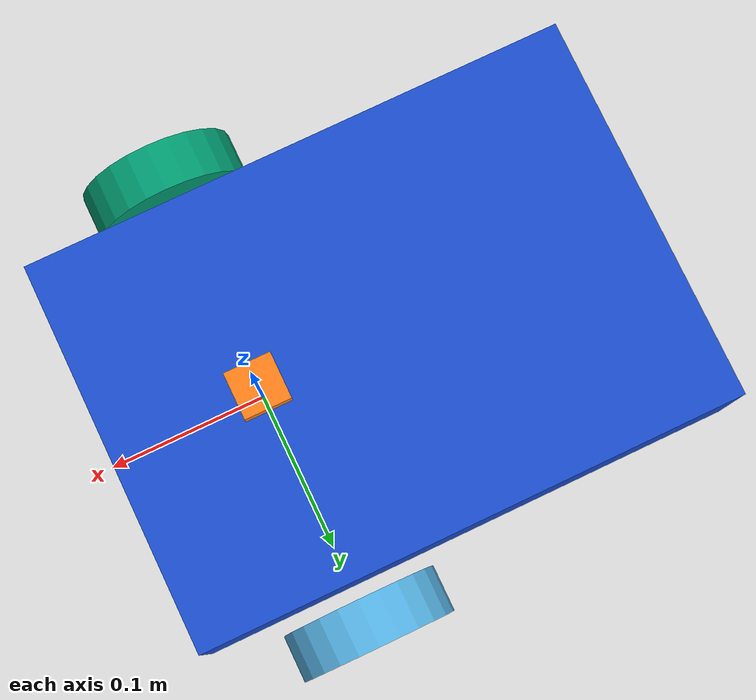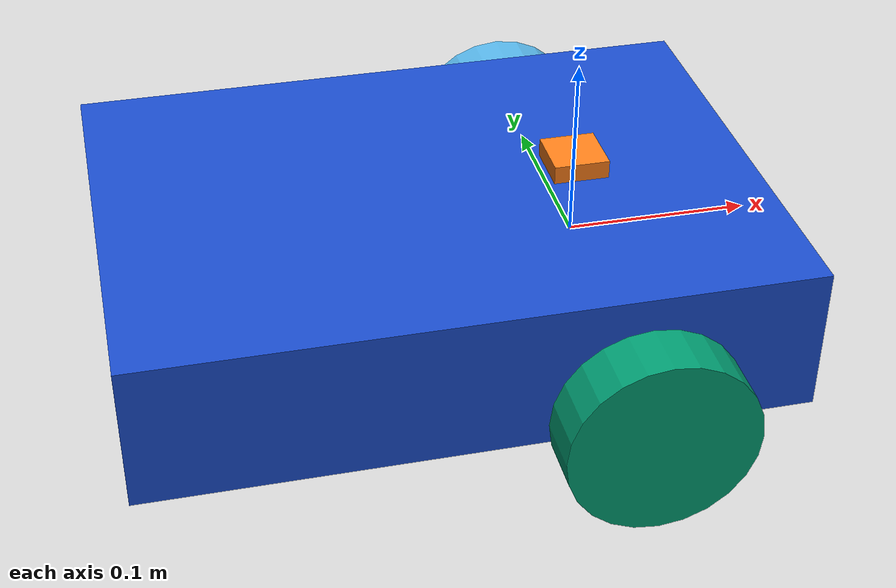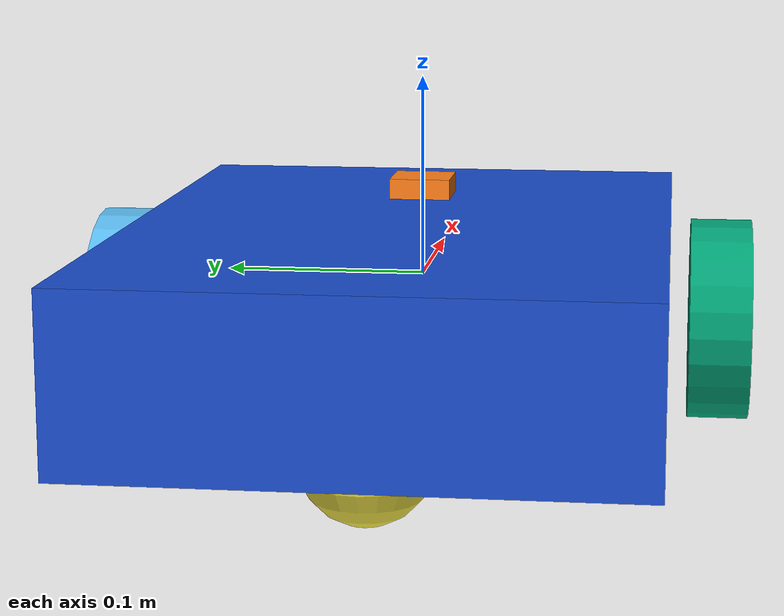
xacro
<?xml version="1.0"?>
<!-- Same diffbot as ros2-nmpc-diffdrive, now with an IMU and a ground-truth pose publisher.
     Gazebo Fortress (the Gazebo that pairs with ROS 2 Humble). -->
<robot name="diffbot" xmlns:xacro="http://www.ros.org/wiki/xacro">
  <xacro:property name="wheel_r" value="0.05"/>
  <xacro:property name="wheel_sep" value="0.30"/>
  <xacro:property name="wheel_w" value="0.03"/>
  <!-- MEMS-class gyro (MPU-6050 ballpark): white noise at 100 Hz plus a small leftover bias
       after the usual "keep still at startup" calibration -->
  <xacro:property name="gyro_std" value="0.009"/>
  <xacro:property name="gyro_bias" value="0.0005"/>
  <xacro:property name="acc_std" value="0.02"/>

  <xacro:macro name="box_inertia" params="m x y z">
    <inertia ixx="${m*(y*y+z*z)/12}" iyy="${m*(x*x+z*z)/12}" izz="${m*(x*x+y*y)/12}"
             ixy="0" ixz="0" iyz="0"/>
  </xacro:macro>

  <xacro:property name="body_x" value="-0.08"/>
  <link name="base_link">
    <visual><origin xyz="${body_x} 0 0"/><geometry><box size="0.35 0.25 0.08"/></geometry>
      <material name="blue"><color rgba="0.1 0.3 0.8 1"/></material></visual>
    <collision><origin xyz="${body_x} 0 0"/><geometry><box size="0.35 0.25 0.08"/></geometry></collision>
    <inertial><origin xyz="${body_x} 0 0"/><mass value="3.0"/>
      <xacro:box_inertia m="3.0" x="0.35" y="0.25" z="0.08"/></inertial>
  </link>

  <xacro:macro name="wheel" params="side y">
    <link name="${side}_wheel">
      <visual><origin rpy="${pi/2} 0 0"/><geometry><cylinder radius="${wheel_r}" length="${wheel_w}"/></geometry></visual>
      <!-- sphere collision: one clean contact point. With a cylinder, Gazebo's contact model made
           the wheels scrub in every turn and the odometry lost ~35 deg of heading per lap. -->
      <collision><geometry><sphere radius="${wheel_r}"/></geometry></collision>
      <inertial><mass value="0.3"/>
        <inertia ixx="0.0002" iyy="0.0004" izz="0.0002" ixy="0" ixz="0" iyz="0"/></inertial>
    </link>
    <joint name="${side}_wheel_joint" type="continuous">
      <parent link="base_link"/><child link="${side}_wheel"/>
      <origin xyz="0 ${y} -0.02"/><axis xyz="0 1 0"/>
    </joint>
  </xacro:macro>
  <xacro:wheel side="left" y="${wheel_sep/2}"/>
  <xacro:wheel side="right" y="${-wheel_sep/2}"/>

  <link name="caster">
    <visual><geometry><sphere radius="0.03"/></geometry></visual>
    <collision><geometry><sphere radius="0.03"/></geometry></collision>
    <inertial><mass value="0.1"/><inertia ixx="1e-5" iyy="1e-5" izz="1e-5" ixy="0" ixz="0" iyz="0"/></inertial>
  </link>
  <joint name="caster_joint" type="fixed">
    <parent link="base_link"/><child link="caster"/><origin xyz="${body_x - 0.12} 0 -0.04"/>
  </joint>
  <gazebo reference="caster"><mu1>0.0</mu1><mu2>0.0</mu2></gazebo>

  <!-- IMU on top, above the axle (only its yaw rate is used, and that's the same anywhere on the body) -->
  <link name="imu_link">
    <visual><geometry><box size="0.03 0.03 0.01"/></geometry>
      <material name="orange"><color rgba="1.0 0.5 0.1 1"/></material></visual>
    <inertial><mass value="0.01"/><inertia ixx="1e-7" iyy="1e-7" izz="1e-7" ixy="0" ixz="0" iyz="0"/></inertial>
  </link>
  <joint name="imu_joint" type="fixed">
    <parent link="base_link"/><child link="imu_link"/><origin xyz="0 0 0.045"/>
  </joint>

  <xacro:macro name="axis_noise" params="axis std bias">
    <xacro:element xacro:name="${axis}"><noise type="gaussian"><mean>0</mean><stddev>${std}</stddev>
      <bias_mean>${bias}</bias_mean><bias_stddev>0.0001</bias_stddev></noise></xacro:element>
  </xacro:macro>
  <gazebo reference="imu_link">
    <sensor name="imu_sensor" type="imu">
      <always_on>1</always_on>
      <update_rate>100</update_rate>
      <topic>imu</topic>
      <ignition_frame_id>imu_link</ignition_frame_id>
      <imu>
        <angular_velocity>
          <xacro:axis_noise axis="x" std="${gyro_std}" bias="${gyro_bias}"/>
          <xacro:axis_noise axis="y" std="${gyro_std}" bias="${gyro_bias}"/>
          <xacro:axis_noise axis="z" std="${gyro_std}" bias="${gyro_bias}"/>
        </angular_velocity>
        <linear_acceleration>
          <xacro:axis_noise axis="x" std="${acc_std}" bias="0.01"/>
          <xacro:axis_noise axis="y" std="${acc_std}" bias="0.01"/>
          <xacro:axis_noise axis="z" std="${acc_std}" bias="0.01"/>
        </linear_acceleration>
      </imu>
    </sensor>
  </gazebo>

  <gazebo>
    <!-- Moves the robot. Its own odometry and TF go to topics nobody listens to: the wheel
         odometry I compare is computed from encoder ticks in wheel_odometry_node instead. -->
    <plugin filename="ignition-gazebo-diff-drive-system" name="ignition::gazebo::systems::DiffDrive">
      <left_joint>left_wheel_joint</left_joint>
      <right_joint>right_wheel_joint</right_joint>
      <wheel_separation>${wheel_sep}</wheel_separation>
      <wheel_radius>${wheel_r}</wheel_radius>
      <topic>cmd_vel</topic>
      <odom_topic>diff_drive/odom_unused</odom_topic>
      <tf_topic>diff_drive/tf_unused</tf_topic>
      <max_linear_acceleration>1.0</max_linear_acceleration>
      <max_angular_acceleration>3.0</max_angular_acceleration>
    </plugin>
    <!-- Wheel angles = the encoders -->
    <plugin filename="ignition-gazebo-joint-state-publisher-system"
            name="ignition::gazebo::systems::JointStatePublisher">
      <topic>joint_states</topic>
    </plugin>
    <!-- Ground truth: the robot's real pose in the world, only used for scoring and steering -->
    <plugin filename="ignition-gazebo-odometry-publisher-system"
            name="ignition::gazebo::systems::OdometryPublisher">
      <odom_frame>world</odom_frame>
      <robot_base_frame>base_link</robot_base_frame>
      <odom_topic>ground_truth</odom_topic>
      <tf_topic>ground_truth/tf_unused</tf_topic>
      <odom_publish_frequency>50</odom_publish_frequency>
      <dimensions>2</dimensions>
    </plugin>
  </gazebo>
</robot>
